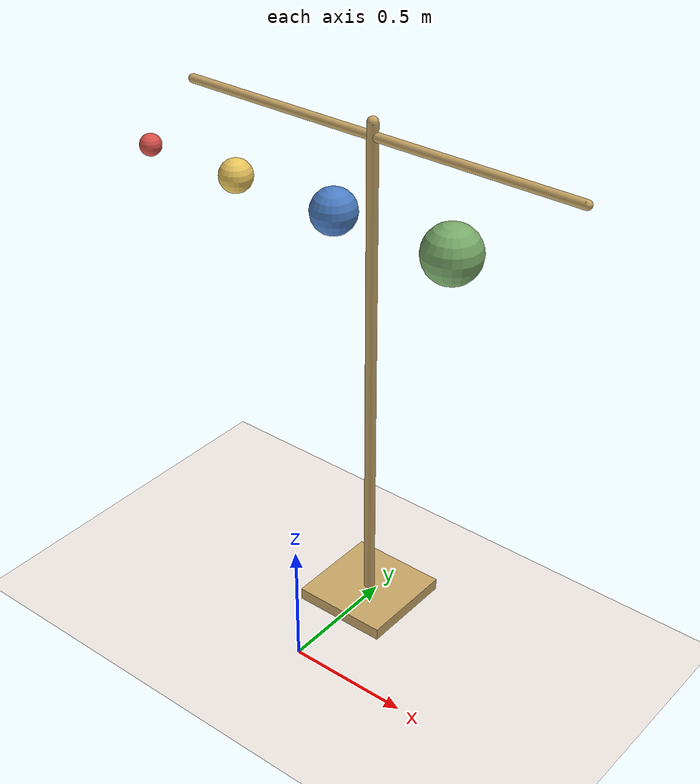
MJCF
<mujoco model="galileo_dropballs">
  <compiler angle="radian" coordinate="local" autolimits="true"/>
  <option timestep="0.001" gravity="0 0 -9.81" integrator="implicitfast"
          impratio="3" cone="elliptic"/>

  <visual>
    <headlight diffuse="0 0 0" ambient="0.50 0.48 0.55" specular="0 0 0"/>
    <rgba haze="0.94 0.91 0.90 1"/>
    <global azimuth="120" elevation="-15" offwidth="1920" offheight="1080" fovy="46"/>
    <quality shadowsize="8192" offsamples="8"/>
    <map shadowclip="6" shadowscale="0.7"/>
  </visual>

  <asset>
    <texture type="skybox" builtin="flat"
             rgb1="0.74 0.68 0.86" rgb2="0.74 0.68 0.86"
             width="512" height="512" mark="none" markrgb="0 0 0"/>
    <material name="floor_mat"   rgba="0.94 0.91 0.90 1" specular="0" shininess="0"/>
    <material name="tower_wood"  rgba="0.78 0.65 0.40 1" specular="0.15" shininess="0.2"/>
    <material name="ball_red"    rgba="0.86 0.32 0.30 1" specular="0.4" shininess="0.55"/>
    <material name="ball_yellow" rgba="0.92 0.78 0.36 1" specular="0.4" shininess="0.55"/>
    <material name="ball_blue"   rgba="0.30 0.50 0.78 1" specular="0.4" shininess="0.55"/>
    <material name="ball_green"  rgba="0.48 0.68 0.42 1" specular="0.4" shininess="0.55"/>
  </asset>

  <default>
    <geom friction="0.5 0.02 0.001" solref="0.005 1" solimp="0.95 0.99 0.001"/>
  </default>

  <worldbody>
    <light pos="0 0 12" dir="-0.30 0.55 -1" directional="true" castshadow="true"
           diffuse="0.85 0.82 0.78" specular="0.15 0.15 0.15"/>
    <light pos="0 0 8" dir="0.40 -0.30 -1" directional="true" castshadow="false"
           diffuse="0.28 0.28 0.34" specular="0 0 0"/>

    <geom name="floor" type="plane" size="40 40 0.1" material="floor_mat"/>

    <geom type="capsule" fromto="0 0.45 0   0 0.45 2.10" size="0.022"
          material="tower_wood"/>
    <geom type="box" size="0.20 0.20 0.025"
          pos="0 0.45 0.025" material="tower_wood"/>
    <!-- Cross-bar at release height (just visual). -->
    <geom type="capsule" fromto="-0.85 0.45 2.05   0.85 0.45 2.05"
          size="0.018" material="tower_wood"/>

    <!-- 4 balls, all CENTERED at z=2.00, at the same instant in time.  No
         platform — they're in vacuum at t=0 and start free-falling
         immediately under gravity. -->
    <body name="ball1" pos="-0.62 0 2.00">
      <freejoint/>
      <geom type="sphere" size="0.040" mass="0.01" material="ball_red"/>
    </body>
    <body name="ball2" pos="-0.22 0 2.00">
      <freejoint/>
      <geom type="sphere" size="0.060" mass="0.20" material="ball_yellow"/>
    </body>
    <body name="ball3" pos="0.20 0 2.00">
      <freejoint/>
      <geom type="sphere" size="0.080" mass="1.00" material="ball_blue"/>
    </body>
    <body name="ball4" pos="0.66 0 2.00">
      <freejoint/>
      <geom type="sphere" size="0.100" mass="5.00" material="ball_green"/>
    </body>

    <!-- Camera: side view, framing the entire drop from release down to floor. -->
    <camera name="cam" pos="0 -2.90 1.10" fovy="50"
            xyaxes="1 0 0   0 0 1"/>
  </worldbody>
</mujoco>
